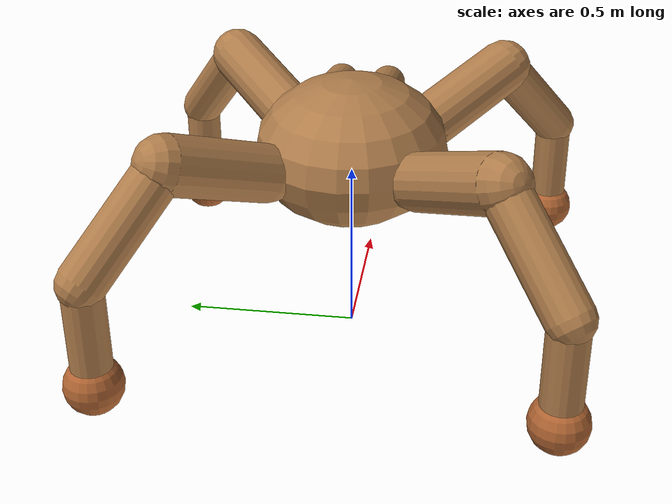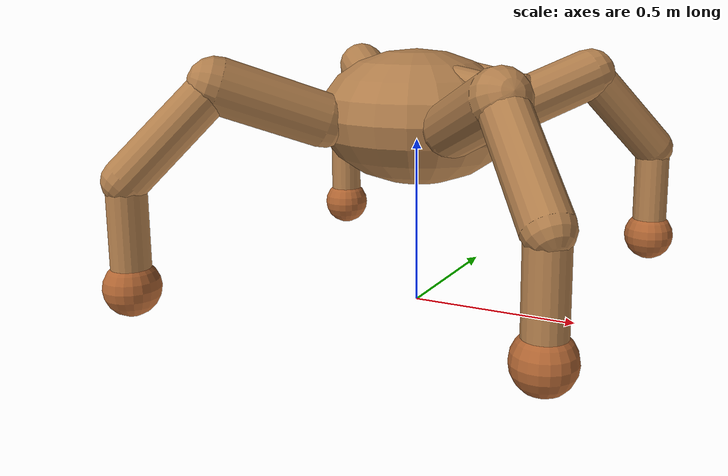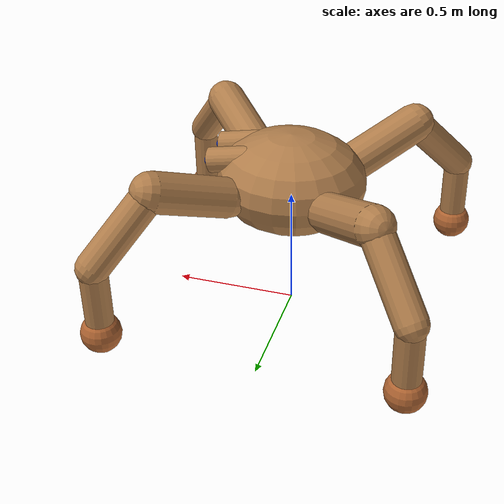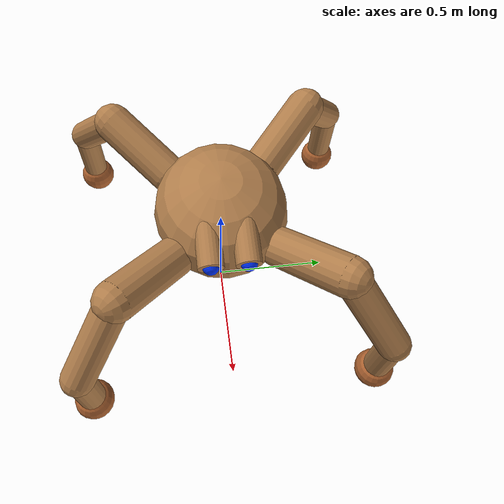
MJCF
<mujoco model="quadruped">

    <visual>
        <quality shadowsize="2048"/>
        <rgba rangefinder="1 1 0.1 0.1"/>
    </visual>

    <asset>
        <texture name="grid" type="2d" builtin="checker" rgb1=".1 .2 .3" rgb2=".2 .3 .4" width="300" height="300" mark="edge" markrgb=".2 .3 .4"/>
        <material name="grid" texture="grid" texrepeat="1 1" texuniform="true" reflectance=".2"/>
        <material name="self" rgba=".7 .5 .3 1"/>
        <material name="self_default" rgba=".7 .5 .3 1"/>
        <material name="self_highlight" rgba="0 .5 .3 1"/>
        <material name="effector" rgba=".7 .4 .2 1"/>
        <material name="effector_default" rgba=".7 .4 .2 1"/>
        <material name="effector_highlight" rgba="0 .5 .3 1"/>
        <material name="decoration" rgba=".3 .5 .7 1"/>
        <material name="eye" rgba="0 .2 1 1"/>
        <material name="target" rgba=".6 .3 .3 1"/>
        <material name="target_default" rgba=".6 .3 .3 1"/>
        <material name="target_highlight" rgba=".6 .3 .3 .4"/>
        <material name="site" rgba=".5 .5 .5 .3"/>

        <hfield name="terrain" ncol="201" nrow="201" size="30 30 5 .1"/>
    </asset>

    <option timestep=".005"/>

    <default>
        <geom solimp=".9 .99 .003" solref=".01 1"/>
        <default class="body">
            <geom    type="capsule" size=".08" condim="1" material="self" density="500"/>
            <joint type="hinge" damping="30" armature=".01"
                         limited="true" solimplimit="0 .99 .01"/>
            <default class="hip">
                <default class="yaw">
                    <joint axis="0 0 1" range="-50 50"/>
                </default>
                <default class="pitch">
                    <joint axis="0 1 0" range="-20 60"/>
                </default>
                <geom fromto="0 0 0 .3 0 .11"/>
            </default>
            <default class="knee">
                <joint axis="0 1 0" range="-60 50"/>
                <geom size=".065" fromto="0 0 0 .25 0 -.25"/>
            </default>
            <default class="ankle">
                <joint axis="0 1 0" range="-45 55"/>
                <geom size=".055" fromto="0 0 0 0 0 -.25"/>
            </default>
            <default class="toe">
                <geom type="sphere" size=".08" material="effector" friction="1.5"/>
                <site type="sphere" size=".084" material="site"    group="4"/>
            </default>
        </default>
        <default class="rangefinder">
            <site type="capsule" size=".005 .1" material="site" group="4"/>
        </default>

        <default class="coupling">
            <equality solimp="0.95 0.99 0.01" solref=".005 .5"/>
        </default>

        <general ctrllimited="true" gainprm="1000" biasprm="0 -1000" biastype="affine" dyntype="filter" dynprm=".1"/>
        <default class="yaw_act">
            <general ctrlrange="-1 1"/>
        </default>
        <default class="lift_act">
            <general ctrlrange="-1 1.1"/>
        </default>
        <default class="extend_act">
            <general ctrlrange="-.8 .8"/>
        </default>
    </default>

    <worldbody>
        <camera name="sideon" pos="0 -10 5" fovy="45" mode="targetbody" target="torso" />
        <camera name="float_far"    pos="-4 0 2" xyaxes="0 -1 0 .5 0 1" mode="trackcom" fovy="90"/>
        <body name="torso" childclass="body" pos="0 0 .57">

            <camera name="x"    pos="-1.7 0 1" xyaxes="0 -1 0 .75 0 1" mode="trackcom"/>
            <camera name="y"    pos="0 4 2" xyaxes="-1 0 0 0 -.5 1" mode="trackcom"/>
            <camera name="egocentric"    pos=".3 0 .11" xyaxes="0 -1 0 .4 0 1" fovy="60"/>
            <light name="light" pos="0 0 4" mode="trackcom"/>

            <geom name="eye_r" type="cylinder" size=".05"    fromto=".1 -.07 .12 .31 -.07 .08" mass="0"/>
            <site name="pupil_r" type="sphere" size=".033"    pos=".3 -.07 .08" zaxis="1 0 0" material="eye"/>
            <geom name="eye_l" type="cylinder" size=".05"    fromto=".1 .07 .12 .31 .07 .08" mass="0"/>
            <site name="pupil_l" type="sphere" size=".033"    pos=".3 .07 .08" zaxis="1 0 0" material="eye"/>
            <site name="workspace" type="sphere" size=".3 .3 .3"    material="site" pos=".8 0 -.2" group="3"/>

            <site name="rf_00" class="rangefinder" fromto=".41 -.02    .11 .34 0 .115"/>
            <site name="rf_01" class="rangefinder" fromto=".41 -.01    .11 .34 0 .115"/>
            <site name="rf_02" class="rangefinder" fromto=".41     0     .11 .34 0 .115"/>
            <site name="rf_03" class="rangefinder" fromto=".41    .01    .11 .34 0 .115"/>
            <site name="rf_04" class="rangefinder" fromto=".41    .02    .11 .34 0 .115"/>
            <site name="rf_10" class="rangefinder" fromto=".41 -.02    .1    .36 0 .11"/>
            <site name="rf_11" class="rangefinder" fromto=".41 -.02    .1    .36 0 .11"/>
            <site name="rf_12" class="rangefinder" fromto=".41     0     .1    .36 0 .11"/>
            <site name="rf_13" class="rangefinder" fromto=".41    .01    .1    .36 0 .11"/>
            <site name="rf_14" class="rangefinder" fromto=".41    .02    .1    .36 0 .11"/>
            <site name="rf_20" class="rangefinder" fromto=".41 -.02    .09 .38 0 .105"/>
            <site name="rf_21" class="rangefinder" fromto=".41 -.01    .09 .38 0 .105"/>
            <site name="rf_22" class="rangefinder" fromto=".41     0     .09 .38 0 .105"/>
            <site name="rf_23" class="rangefinder" fromto=".41    .01    .09 .38 0 .105"/>
            <site name="rf_24" class="rangefinder" fromto=".41    .02    .09 .38 0 .105"/>
            <site name="rf_30" class="rangefinder" fromto=".41 -.02    .08 .4    0 .1"/>
            <site name="rf_31" class="rangefinder" fromto=".41 -.01    .08 .4    0 .1"/>
            <site name="rf_32" class="rangefinder" fromto=".41     0     .08 .4    0 .1"/>
            <site name="rf_33" class="rangefinder" fromto=".41    .01    .08 .4    0 .1"/>
            <site name="rf_34" class="rangefinder" fromto=".41    .02    .08 .4    0 .1"/>

            <geom name="torso" type="ellipsoid" size=".3 .27 .2" density="1000"/>
            <site name="torso_touch" type="box" size=".26 .26 .26" rgba="0 0 1 0"/>
            <site name="torso" size=".05" rgba="1 0 0 1" />

            <body name="hip_front_left" pos=".2 .2 0" euler="0 0 45" childclass="hip">
                <joint name="yaw_front_left" class="yaw"/>
                <joint name="pitch_front_left" class="pitch"/>
                <geom name="thigh_front_left"/>
                <body name="knee_front_left" pos=".3 0 .11" childclass="knee">
                    <joint name="knee_front_left"/>
                    <geom name="shin_front_left"/>
                    <body name="ankle_front_left" pos=".25 0 -.25" childclass="ankle">
                        <joint name="ankle_front_left"/>
                        <geom name="foot_front_left"/>
                        <body name="toe_front_left" pos="0 0 -.3" childclass="toe">
                            <geom name="toe_front_left"/>
                            <site name="toe_front_left"/>
                        </body>
                    </body>
                </body>
            </body>

            <body name="hip_front_right" pos=".2 -.2 0" euler="0 0 -45" childclass="hip">
                <joint name="yaw_front_right" class="yaw"/>
                <joint name="pitch_front_right" class="pitch"/>
                <geom name="thigh_front_right"/>
                <body name="knee_front_right" pos=".3 0 .11" childclass="knee">
                    <joint name="knee_front_right"/>
                    <geom name="shin_front_right"/>
                    <body name="ankle_front_right" pos=".25 0 -.25" childclass="ankle">
                        <joint name="ankle_front_right"/>
                        <geom name="foot_front_right"/>
                        <body name="toe_front_right" pos="0 0 -.3" childclass="toe">
                            <geom name="toe_front_right"/>
                            <site name="toe_front_right"/>
                        </body>
                    </body>
                </body>
            </body>

            <body name="hip_back_right" pos="-.2 -.2 0" euler="0 0 -135" childclass="hip">
                <joint name="yaw_back_right" class="yaw"/>
                <joint name="pitch_back_right" class="pitch"/>
                <geom name="thigh_back_right"/>
                <body name="knee_back_right" pos=".3 0 .11" childclass="knee">
                    <joint name="knee_back_right"/>
                    <geom name="shin_back_right"/>
                    <body name="ankle_back_right" pos=".25 0 -.25" childclass="ankle">
                        <joint name="ankle_back_right"/>
                        <geom name="foot_back_right"/>
                        <body name="toe_back_right" pos="0 0 -.3" childclass="toe">
                            <geom name="toe_back_right"/>
                            <site name="toe_back_right"/>
                        </body>
                    </body>
                </body>
            </body>

            <body name="hip_back_left" pos="-.2 .2 0" euler="0 0 135" childclass="hip">
                <joint name="yaw_back_left" class="yaw"/>
                <joint name="pitch_back_left" class="pitch"/>
                <geom name="thigh_back_left"/>
                <body name="knee_back_left" pos=".3 0 .11" childclass="knee">
                    <joint name="knee_back_left"/>
                    <geom name="shin_back_left"/>
                    <body name="ankle_back_left" pos=".25 0 -.25" childclass="ankle">
                        <joint name="ankle_back_left"/>
                        <geom name="foot_back_left"/>
                        <body name="toe_back_left" pos="0 0 -.3" childclass="toe">
                            <geom name="toe_back_left"/>
                            <site name="toe_back_left"/>
                        </body>
                    </body>
                </body>
            </body>
        </body>
    </worldbody>

    <tendon>
        <fixed name="coupling_front_left">
            <joint joint="pitch_front_left"            coef=".333"/>
            <joint joint="knee_front_left"             coef=".333"/>
            <joint joint="ankle_front_left"            coef=".333"/>
        </fixed>
        <fixed name="coupling_front_right">
            <joint joint="pitch_front_right"            coef=".333"/>
            <joint joint="knee_front_right"             coef=".333"/>
            <joint joint="ankle_front_right"            coef=".333"/>
        </fixed>
        <fixed name="coupling_back_right">
            <joint joint="pitch_back_right"            coef=".333"/>
            <joint joint="knee_back_right"             coef=".333"/>
            <joint joint="ankle_back_right"            coef=".333"/>
        </fixed>
        <fixed name="coupling_back_left">
            <joint joint="pitch_back_left"            coef=".333"/>
            <joint joint="knee_back_left"             coef=".333"/>
            <joint joint="ankle_back_left"            coef=".333"/>
        </fixed>

        <fixed name="extend_front_left">
            <joint joint="pitch_front_left"            coef=".25"/>
            <joint joint="knee_front_left"             coef="-.5"/>
            <joint joint="ankle_front_left"            coef=".25"/>
        </fixed>
        <fixed name="lift_front_left">
            <joint joint="pitch_front_left"            coef=".5"/>
            <joint joint="ankle_front_left"            coef="-.5"/>
        </fixed>

        <fixed name="extend_front_right">
            <joint joint="pitch_front_right"         coef=".25"/>
            <joint joint="knee_front_right"            coef="-.5"/>
            <joint joint="ankle_front_right"         coef=".25"/>
        </fixed>
        <fixed name="lift_front_right">
            <joint joint="pitch_front_right"         coef=".5"/>
            <joint joint="ankle_front_right"         coef="-.5"/>
        </fixed>

        <fixed name="extend_back_right">
            <joint joint="pitch_back_right"         coef=".25"/>
            <joint joint="knee_back_right"            coef="-.5"/>
            <joint joint="ankle_back_right"         coef=".25"/>
        </fixed>
        <fixed name="lift_back_right">
            <joint joint="pitch_back_right"         coef=".5"/>
            <joint joint="ankle_back_right"         coef="-.5"/>
        </fixed>

        <fixed name="extend_back_left">
            <joint joint="pitch_back_left"            coef=".25"/>
            <joint joint="knee_back_left"             coef="-.5"/>
            <joint joint="ankle_back_left"            coef=".25"/>
        </fixed>
        <fixed name="lift_back_left">
            <joint joint="pitch_back_left"         coef=".5"/>
            <joint joint="ankle_back_left"         coef="-.5"/>
        </fixed>
    </tendon>

    <equality>
        <tendon name="coupling_front_left" tendon1="coupling_front_left" class="coupling"/>
        <tendon name="coupling_front_right" tendon1="coupling_front_right" class="coupling"/>
        <tendon name="coupling_back_right" tendon1="coupling_back_right" class="coupling"/>
        <tendon name="coupling_back_left" tendon1="coupling_back_left" class="coupling"/>
    </equality>

    <actuator>
        <general name="yaw_front_left" class="yaw_act" joint="yaw_front_left"/>
        <general name="lift_front_left" class="lift_act" tendon="lift_front_left"/>
        <general name="extend_front_left" class="extend_act" tendon="extend_front_left"/>
        <general name="yaw_front_right" class="yaw_act" joint="yaw_front_right"/>
        <general name="lift_front_right" class="lift_act" tendon="lift_front_right"/>
        <general name="extend_front_right" class="extend_act" tendon="extend_front_right"/>
        <general name="yaw_back_right" class="yaw_act" joint="yaw_back_right"/>
        <general name="lift_back_right" class="lift_act" tendon="lift_back_right"/>
        <general name="extend_back_right" class="extend_act" tendon="extend_back_right"/>
        <general name="yaw_back_left" class="yaw_act" joint="yaw_back_left"/>
        <general name="lift_back_left" class="lift_act" tendon="lift_back_left"/>
        <general name="extend_back_left" class="extend_act" tendon="extend_back_left"/>
    </actuator>

    <sensor>
        <accelerometer name="imu_accel" site="torso"/>
        <gyro name="imu_gyro" site="torso"/>
        <velocimeter name="velocimeter" site="torso"/>
        <force name="force_toe_front_left" site="toe_front_left"/>
        <force name="force_toe_front_right" site="toe_front_right"/>
        <force name="force_toe_back_right" site="toe_back_right"/>
        <force name="force_toe_back_left" site="toe_back_left"/>
        <torque name="torque_toe_front_left" site="toe_front_left"/>
        <torque name="torque_toe_front_right" site="toe_front_right"/>
        <torque name="torque_toe_back_right" site="toe_back_right"/>
        <torque name="torque_toe_back_left" site="toe_back_left"/>
        <subtreecom name="center_of_mass" body="torso"/>
        <rangefinder name="rf_00" site="rf_00"/>
        <rangefinder name="rf_01" site="rf_01"/>
        <rangefinder name="rf_02" site="rf_02"/>
        <rangefinder name="rf_03" site="rf_03"/>
        <rangefinder name="rf_04" site="rf_04"/>
        <rangefinder name="rf_10" site="rf_10"/>
        <rangefinder name="rf_11" site="rf_11"/>
        <rangefinder name="rf_12" site="rf_12"/>
        <rangefinder name="rf_13" site="rf_13"/>
        <rangefinder name="rf_14" site="rf_14"/>
        <rangefinder name="rf_20" site="rf_20"/>
        <rangefinder name="rf_21" site="rf_21"/>
        <rangefinder name="rf_22" site="rf_22"/>
        <rangefinder name="rf_23" site="rf_23"/>
        <rangefinder name="rf_24" site="rf_24"/>
        <rangefinder name="rf_30" site="rf_30"/>
        <rangefinder name="rf_31" site="rf_31"/>
        <rangefinder name="rf_32" site="rf_32"/>
        <rangefinder name="rf_33" site="rf_33"/>
        <rangefinder name="rf_34" site="rf_34"/>
    </sensor>
</mujoco>
